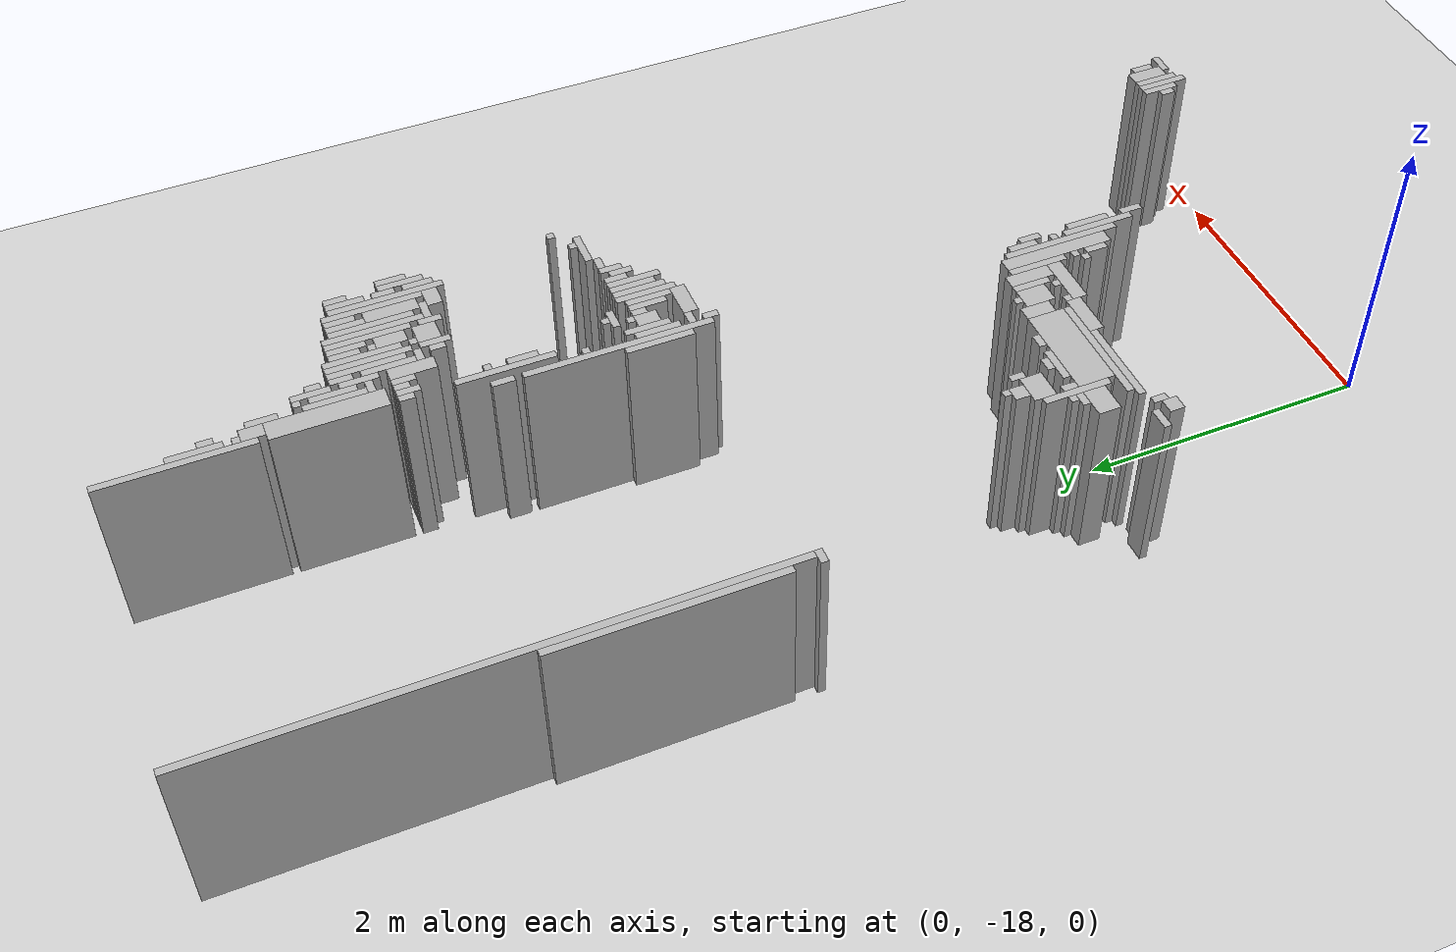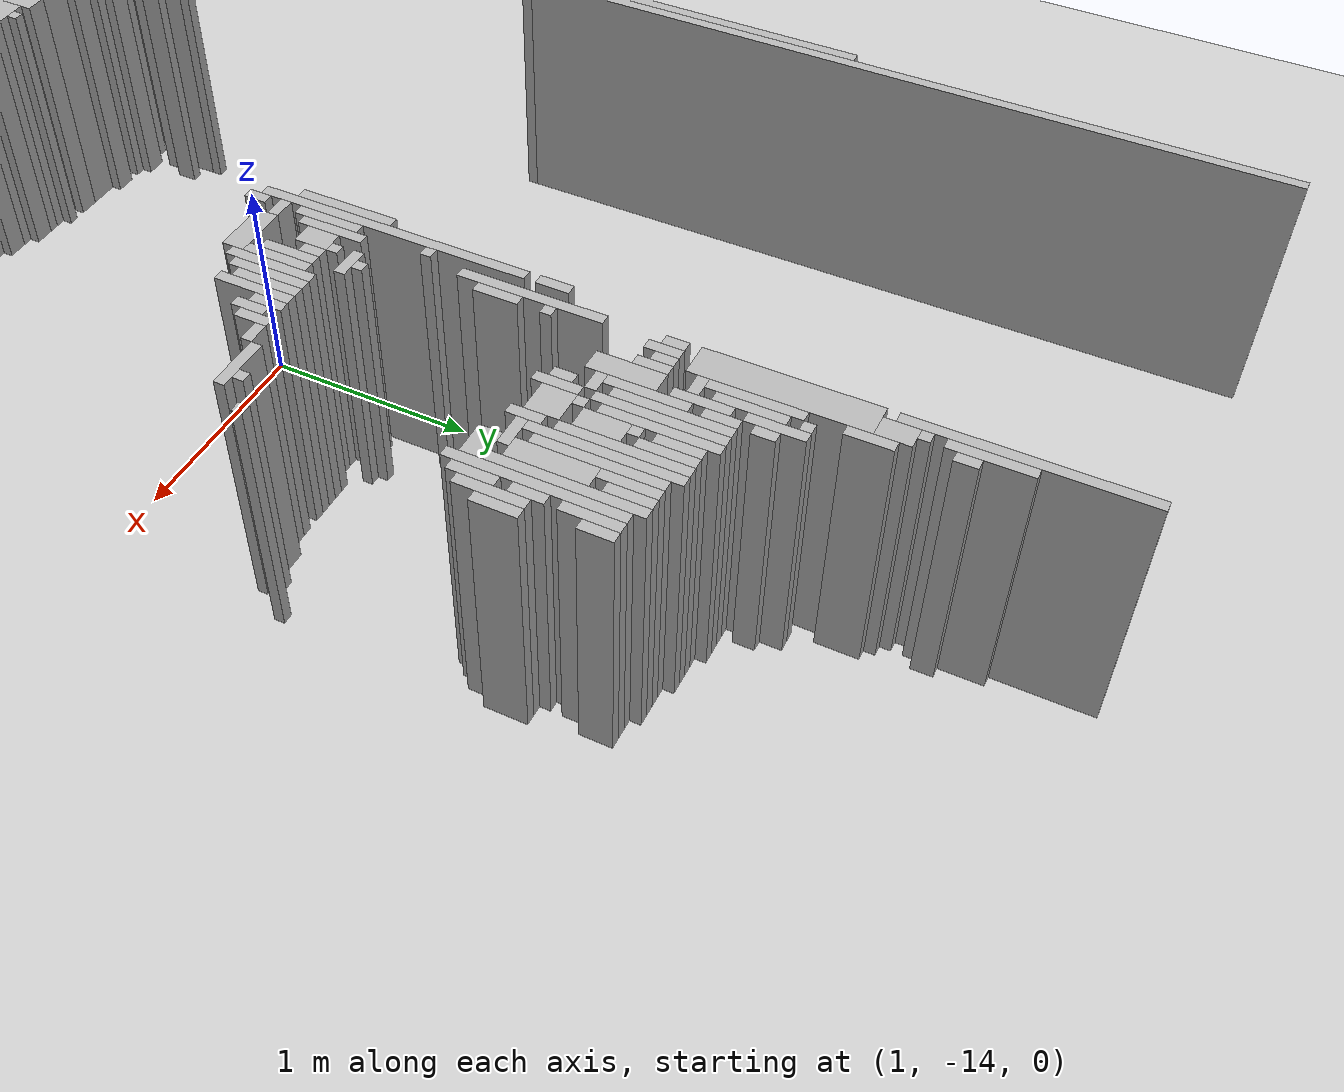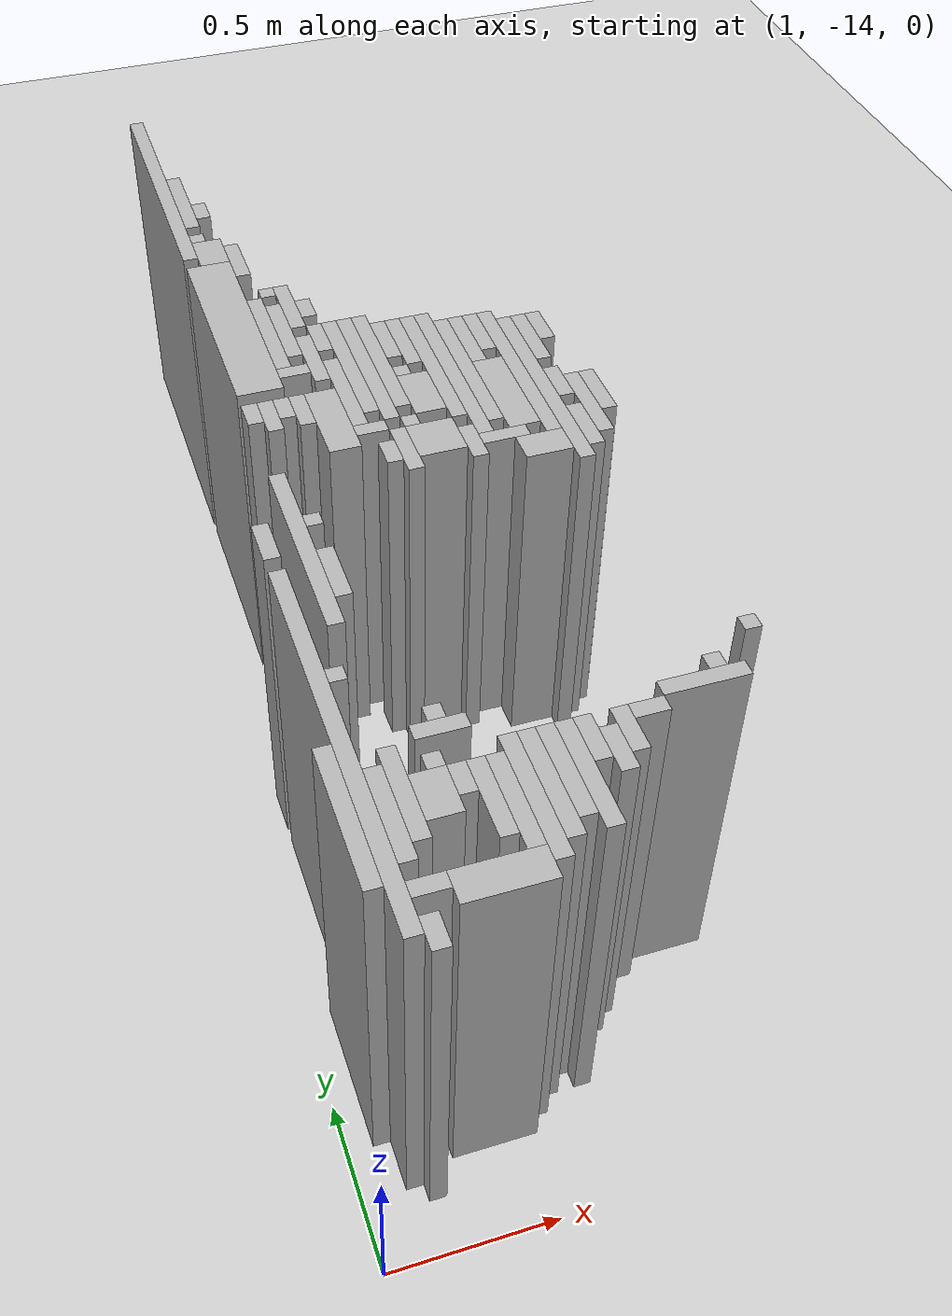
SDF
<sdf version="1.6">
 <world name="d10_floor">
  <include><uri>model://sun</uri></include>
  <include><uri>model://ground_plane</uri></include>
  <model name="d10_walls">
   <static>true</static>
   <link name="w196">
    <pose>2.150 -17.620 0.60 0 0 0</pose>
    <collision name="c"><geometry><box><size>0.050 0.350 1.20</size></box></geometry></collision>
    <visual name="v">
     <geometry><box><size>0.050 0.350 1.20</size></box></geometry>
     <material><ambient>0.6 0.6 0.6 1</ambient><diffuse>0.7 0.7 0.7 1</diffuse></material>
    </visual>
   </link>
   <link name="w204">
    <pose>2.200 -17.595 0.60 0 0 0</pose>
    <collision name="c"><geometry><box><size>0.050 0.300 1.20</size></box></geometry></collision>
    <visual name="v">
     <geometry><box><size>0.050 0.300 1.20</size></box></geometry>
     <material><ambient>0.6 0.6 0.6 1</ambient><diffuse>0.7 0.7 0.7 1</diffuse></material>
    </visual>
   </link>
   <link name="w205">
    <pose>2.350 -17.720 0.60 0 0 0</pose>
    <collision name="c"><geometry><box><size>0.150 0.050 1.20</size></box></geometry></collision>
    <visual name="v">
     <geometry><box><size>0.150 0.050 1.20</size></box></geometry>
     <material><ambient>0.6 0.6 0.6 1</ambient><diffuse>0.7 0.7 0.7 1</diffuse></material>
    </visual>
   </link>
   <link name="w213">
    <pose>2.100 -17.570 0.60 0 0 0</pose>
    <collision name="c"><geometry><box><size>0.050 0.250 1.20</size></box></geometry></collision>
    <visual name="v">
     <geometry><box><size>0.050 0.250 1.20</size></box></geometry>
     <material><ambient>0.6 0.6 0.6 1</ambient><diffuse>0.7 0.7 0.7 1</diffuse></material>
    </visual>
   </link>
   <link name="w214">
    <pose>2.275 -17.570 0.60 0 0 0</pose>
    <collision name="c"><geometry><box><size>0.100 0.250 1.20</size></box></geometry></collision>
    <visual name="v">
     <geometry><box><size>0.100 0.250 1.20</size></box></geometry>
     <material><ambient>0.6 0.6 0.6 1</ambient><diffuse>0.7 0.7 0.7 1</diffuse></material>
    </visual>
   </link>
   <link name="w219">
    <pose>2.050 -17.595 0.60 0 0 0</pose>
    <collision name="c"><geometry><box><size>0.050 0.100 1.20</size></box></geometry></collision>
    <visual name="v">
     <geometry><box><size>0.050 0.100 1.20</size></box></geometry>
     <material><ambient>0.6 0.6 0.6 1</ambient><diffuse>0.7 0.7 0.7 1</diffuse></material>
    </visual>
   </link>
   <link name="w220">
    <pose>2.350 -17.570 0.60 0 0 0</pose>
    <collision name="c"><geometry><box><size>0.050 0.150 1.20</size></box></geometry></collision>
    <visual name="v">
     <geometry><box><size>0.050 0.150 1.20</size></box></geometry>
     <material><ambient>0.6 0.6 0.6 1</ambient><diffuse>0.7 0.7 0.7 1</diffuse></material>
    </visual>
   </link>
   <link name="w258">
    <pose>1.050 -16.720 0.60 0 0 0</pose>
    <collision name="c"><geometry><box><size>0.050 0.150 1.20</size></box></geometry></collision>
    <visual name="v">
     <geometry><box><size>0.050 0.150 1.20</size></box></geometry>
     <material><ambient>0.6 0.6 0.6 1</ambient><diffuse>0.7 0.7 0.7 1</diffuse></material>
    </visual>
   </link>
   <link name="w266">
    <pose>1.000 -16.445 0.60 0 0 0</pose>
    <collision name="c"><geometry><box><size>0.050 0.500 1.20</size></box></geometry></collision>
    <visual name="v">
     <geometry><box><size>0.050 0.500 1.20</size></box></geometry>
     <material><ambient>0.6 0.6 0.6 1</ambient><diffuse>0.7 0.7 0.7 1</diffuse></material>
    </visual>
   </link>
   <link name="w279">
    <pose>0.950 -16.145 0.60 0 0 0</pose>
    <collision name="c"><geometry><box><size>0.050 0.800 1.20</size></box></geometry></collision>
    <visual name="v">
     <geometry><box><size>0.050 0.800 1.20</size></box></geometry>
     <material><ambient>0.6 0.6 0.6 1</ambient><diffuse>0.7 0.7 0.7 1</diffuse></material>
    </visual>
   </link>
   <link name="w280">
    <pose>1.050 -16.395 0.60 0 0 0</pose>
    <collision name="c"><geometry><box><size>0.050 0.300 1.20</size></box></geometry></collision>
    <visual name="v">
     <geometry><box><size>0.050 0.300 1.20</size></box></geometry>
     <material><ambient>0.6 0.6 0.6 1</ambient><diffuse>0.7 0.7 0.7 1</diffuse></material>
    </visual>
   </link>
   <link name="w288">
    <pose>0.875 -16.070 0.60 0 0 0</pose>
    <collision name="c"><geometry><box><size>0.100 0.750 1.20</size></box></geometry></collision>
    <visual name="v">
     <geometry><box><size>0.100 0.750 1.20</size></box></geometry>
     <material><ambient>0.6 0.6 0.6 1</ambient><diffuse>0.7 0.7 0.7 1</diffuse></material>
    </visual>
   </link>
   <link name="w289">
    <pose>0.800 -16.320 0.60 0 0 0</pose>
    <collision name="c"><geometry><box><size>0.050 0.150 1.20</size></box></geometry></collision>
    <visual name="v">
     <geometry><box><size>0.050 0.150 1.20</size></box></geometry>
     <material><ambient>0.6 0.6 0.6 1</ambient><diffuse>0.7 0.7 0.7 1</diffuse></material>
    </visual>
   </link>
   <link name="w327">
    <pose>0.750 -16.220 0.60 0 0 0</pose>
    <collision name="c"><geometry><box><size>0.050 0.050 1.20</size></box></geometry></collision>
    <visual name="v">
     <geometry><box><size>0.050 0.050 1.20</size></box></geometry>
     <material><ambient>0.6 0.6 0.6 1</ambient><diffuse>0.7 0.7 0.7 1</diffuse></material>
    </visual>
   </link>
   <link name="w346">
    <pose>0.800 -16.170 0.60 0 0 0</pose>
    <collision name="c"><geometry><box><size>0.050 0.050 1.20</size></box></geometry></collision>
    <visual name="v">
     <geometry><box><size>0.050 0.050 1.20</size></box></geometry>
     <material><ambient>0.6 0.6 0.6 1</ambient><diffuse>0.7 0.7 0.7 1</diffuse></material>
    </visual>
   </link>
   <link name="w375">
    <pose>1.000 -16.120 0.60 0 0 0</pose>
    <collision name="c"><geometry><box><size>0.050 0.050 1.20</size></box></geometry></collision>
    <visual name="v">
     <geometry><box><size>0.050 0.050 1.20</size></box></geometry>
     <material><ambient>0.6 0.6 0.6 1</ambient><diffuse>0.7 0.7 0.7 1</diffuse></material>
    </visual>
   </link>
   <link name="w407">
    <pose>-0.625 -16.045 0.60 0 0 0</pose>
    <collision name="c"><geometry><box><size>0.100 0.100 1.20</size></box></geometry></collision>
    <visual name="v">
     <geometry><box><size>0.100 0.100 1.20</size></box></geometry>
     <material><ambient>0.6 0.6 0.6 1</ambient><diffuse>0.7 0.7 0.7 1</diffuse></material>
    </visual>
   </link>
   <link name="w408">
    <pose>0.800 -15.895 0.60 0 0 0</pose>
    <collision name="c"><geometry><box><size>0.050 0.400 1.20</size></box></geometry></collision>
    <visual name="v">
     <geometry><box><size>0.050 0.400 1.20</size></box></geometry>
     <material><ambient>0.6 0.6 0.6 1</ambient><diffuse>0.7 0.7 0.7 1</diffuse></material>
    </visual>
   </link>
   <link name="w431">
    <pose>-0.550 -15.995 0.60 0 0 0</pose>
    <collision name="c"><geometry><box><size>0.050 0.100 1.20</size></box></geometry></collision>
    <visual name="v">
     <geometry><box><size>0.050 0.100 1.20</size></box></geometry>
     <material><ambient>0.6 0.6 0.6 1</ambient><diffuse>0.7 0.7 0.7 1</diffuse></material>
    </visual>
   </link>
   <link name="w432">
    <pose>0.600 -15.995 0.60 0 0 0</pose>
    <collision name="c"><geometry><box><size>0.350 0.100 1.20</size></box></geometry></collision>
    <visual name="v">
     <geometry><box><size>0.350 0.100 1.20</size></box></geometry>
     <material><ambient>0.6 0.6 0.6 1</ambient><diffuse>0.7 0.7 0.7 1</diffuse></material>
    </visual>
   </link>
   <link name="w433">
    <pose>1.050 -15.970 0.60 0 0 0</pose>
    <collision name="c"><geometry><box><size>0.050 0.150 1.20</size></box></geometry></collision>
    <visual name="v">
     <geometry><box><size>0.050 0.150 1.20</size></box></geometry>
     <material><ambient>0.6 0.6 0.6 1</ambient><diffuse>0.7 0.7 0.7 1</diffuse></material>
    </visual>
   </link>
   <link name="w456">
    <pose>0.275 -15.945 0.60 0 0 0</pose>
    <collision name="c"><geometry><box><size>0.300 0.100 1.20</size></box></geometry></collision>
    <visual name="v">
     <geometry><box><size>0.300 0.100 1.20</size></box></geometry>
     <material><ambient>0.6 0.6 0.6 1</ambient><diffuse>0.7 0.7 0.7 1</diffuse></material>
    </visual>
   </link>
   <link name="w457">
    <pose>1.000 -15.895 0.60 0 0 0</pose>
    <collision name="c"><geometry><box><size>0.050 0.200 1.20</size></box></geometry></collision>
    <visual name="v">
     <geometry><box><size>0.050 0.200 1.20</size></box></geometry>
     <material><ambient>0.6 0.6 0.6 1</ambient><diffuse>0.7 0.7 0.7 1</diffuse></material>
    </visual>
   </link>
   <link name="w470">
    <pose>-0.700 -15.920 0.60 0 0 0</pose>
    <collision name="c"><geometry><box><size>0.150 0.050 1.20</size></box></geometry></collision>
    <visual name="v">
     <geometry><box><size>0.150 0.050 1.20</size></box></geometry>
     <material><ambient>0.6 0.6 0.6 1</ambient><diffuse>0.7 0.7 0.7 1</diffuse></material>
    </visual>
   </link>
   <link name="w471">
    <pose>-0.175 -15.920 0.60 0 0 0</pose>
    <collision name="c"><geometry><box><size>0.600 0.050 1.20</size></box></geometry></collision>
    <visual name="v">
     <geometry><box><size>0.600 0.050 1.20</size></box></geometry>
     <material><ambient>0.6 0.6 0.6 1</ambient><diffuse>0.7 0.7 0.7 1</diffuse></material>
    </visual>
   </link>
   <link name="w472">
    <pose>0.450 -15.920 0.60 0 0 0</pose>
    <collision name="c"><geometry><box><size>0.050 0.050 1.20</size></box></geometry></collision>
    <visual name="v">
     <geometry><box><size>0.050 0.050 1.20</size></box></geometry>
     <material><ambient>0.6 0.6 0.6 1</ambient><diffuse>0.7 0.7 0.7 1</diffuse></material>
    </visual>
   </link>
   <link name="w473">
    <pose>0.600 -15.920 0.60 0 0 0</pose>
    <collision name="c"><geometry><box><size>0.050 0.050 1.20</size></box></geometry></collision>
    <visual name="v">
     <geometry><box><size>0.050 0.050 1.20</size></box></geometry>
     <material><ambient>0.6 0.6 0.6 1</ambient><diffuse>0.7 0.7 0.7 1</diffuse></material>
    </visual>
   </link>
   <link name="w474">
    <pose>0.725 -15.795 0.60 0 0 0</pose>
    <collision name="c"><geometry><box><size>0.100 0.300 1.20</size></box></geometry></collision>
    <visual name="v">
     <geometry><box><size>0.100 0.300 1.20</size></box></geometry>
     <material><ambient>0.6 0.6 0.6 1</ambient><diffuse>0.7 0.7 0.7 1</diffuse></material>
    </visual>
   </link>
   <link name="w487">
    <pose>-0.025 -15.870 0.60 0 0 0</pose>
    <collision name="c"><geometry><box><size>0.800 0.050 1.20</size></box></geometry></collision>
    <visual name="v">
     <geometry><box><size>0.800 0.050 1.20</size></box></geometry>
     <material><ambient>0.6 0.6 0.6 1</ambient><diffuse>0.7 0.7 0.7 1</diffuse></material>
    </visual>
   </link>
   <link name="w488">
    <pose>0.650 -15.770 0.60 0 0 0</pose>
    <collision name="c"><geometry><box><size>0.050 0.250 1.20</size></box></geometry></collision>
    <visual name="v">
     <geometry><box><size>0.050 0.250 1.20</size></box></geometry>
     <material><ambient>0.6 0.6 0.6 1</ambient><diffuse>0.7 0.7 0.7 1</diffuse></material>
    </visual>
   </link>
   <link name="w496">
    <pose>0.050 -15.720 0.60 0 0 0</pose>
    <collision name="c"><geometry><box><size>0.650 0.250 1.20</size></box></geometry></collision>
    <visual name="v">
     <geometry><box><size>0.650 0.250 1.20</size></box></geometry>
     <material><ambient>0.6 0.6 0.6 1</ambient><diffuse>0.7 0.7 0.7 1</diffuse></material>
    </visual>
   </link>
   <link name="w497">
    <pose>0.550 -15.745 0.60 0 0 0</pose>
    <collision name="c"><geometry><box><size>0.150 0.200 1.20</size></box></geometry></collision>
    <visual name="v">
     <geometry><box><size>0.150 0.200 1.20</size></box></geometry>
     <material><ambient>0.6 0.6 0.6 1</ambient><diffuse>0.7 0.7 0.7 1</diffuse></material>
    </visual>
   </link>
   <link name="w503">
    <pose>-0.300 -15.570 0.60 0 0 0</pose>
    <collision name="c"><geometry><box><size>0.050 0.450 1.20</size></box></geometry></collision>
    <visual name="v">
     <geometry><box><size>0.050 0.450 1.20</size></box></geometry>
     <material><ambient>0.6 0.6 0.6 1</ambient><diffuse>0.7 0.7 0.7 1</diffuse></material>
    </visual>
   </link>
   <link name="w504">
    <pose>0.425 -15.695 0.60 0 0 0</pose>
    <collision name="c"><geometry><box><size>0.100 0.200 1.20</size></box></geometry></collision>
    <visual name="v">
     <geometry><box><size>0.100 0.200 1.20</size></box></geometry>
     <material><ambient>0.6 0.6 0.6 1</ambient><diffuse>0.7 0.7 0.7 1</diffuse></material>
    </visual>
   </link>
   <link name="w510">
    <pose>-0.425 -15.670 0.60 0 0 0</pose>
    <collision name="c"><geometry><box><size>0.200 0.150 1.20</size></box></geometry></collision>
    <visual name="v">
     <geometry><box><size>0.200 0.150 1.20</size></box></geometry>
     <material><ambient>0.6 0.6 0.6 1</ambient><diffuse>0.7 0.7 0.7 1</diffuse></material>
    </visual>
   </link>
   <link name="w526">
    <pose>0.550 -15.620 0.60 0 0 0</pose>
    <collision name="c"><geometry><box><size>0.050 0.050 1.20</size></box></geometry></collision>
    <visual name="v">
     <geometry><box><size>0.050 0.050 1.20</size></box></geometry>
     <material><ambient>0.6 0.6 0.6 1</ambient><diffuse>0.7 0.7 0.7 1</diffuse></material>
    </visual>
   </link>
   <link name="w536">
    <pose>-0.375 -15.570 0.60 0 0 0</pose>
    <collision name="c"><geometry><box><size>0.100 0.050 1.20</size></box></geometry></collision>
    <visual name="v">
     <geometry><box><size>0.100 0.050 1.20</size></box></geometry>
     <material><ambient>0.6 0.6 0.6 1</ambient><diffuse>0.7 0.7 0.7 1</diffuse></material>
    </visual>
   </link>
   <link name="w537">
    <pose>-0.250 -15.545 0.60 0 0 0</pose>
    <collision name="c"><geometry><box><size>0.050 0.100 1.20</size></box></geometry></collision>
    <visual name="v">
     <geometry><box><size>0.050 0.100 1.20</size></box></geometry>
     <material><ambient>0.6 0.6 0.6 1</ambient><diffuse>0.7 0.7 0.7 1</diffuse></material>
    </visual>
   </link>
   <link name="w538">
    <pose>-0.050 -15.570 0.60 0 0 0</pose>
    <collision name="c"><geometry><box><size>0.250 0.050 1.20</size></box></geometry></collision>
    <visual name="v">
     <geometry><box><size>0.250 0.050 1.20</size></box></geometry>
     <material><ambient>0.6 0.6 0.6 1</ambient><diffuse>0.7 0.7 0.7 1</diffuse></material>
    </visual>
   </link>
   <link name="w539">
    <pose>0.175 -15.570 0.60 0 0 0</pose>
    <collision name="c"><geometry><box><size>0.100 0.050 1.20</size></box></geometry></collision>
    <visual name="v">
     <geometry><box><size>0.100 0.050 1.20</size></box></geometry>
     <material><ambient>0.6 0.6 0.6 1</ambient><diffuse>0.7 0.7 0.7 1</diffuse></material>
    </visual>
   </link>
   <link name="w547">
    <pose>-0.350 -15.520 0.60 0 0 0</pose>
    <collision name="c"><geometry><box><size>0.050 0.050 1.20</size></box></geometry></collision>
    <visual name="v">
     <geometry><box><size>0.050 0.050 1.20</size></box></geometry>
     <material><ambient>0.6 0.6 0.6 1</ambient><diffuse>0.7 0.7 0.7 1</diffuse></material>
    </visual>
   </link>
   <link name="w548">
    <pose>-0.025 -15.520 0.60 0 0 0</pose>
    <collision name="c"><geometry><box><size>0.100 0.050 1.20</size></box></geometry></collision>
    <visual name="v">
     <geometry><box><size>0.100 0.050 1.20</size></box></geometry>
     <material><ambient>0.6 0.6 0.6 1</ambient><diffuse>0.7 0.7 0.7 1</diffuse></material>
    </visual>
   </link>
   <link name="w555">
    <pose>-0.175 -15.370 0.60 0 0 0</pose>
    <collision name="c"><geometry><box><size>0.200 0.150 1.20</size></box></geometry></collision>
    <visual name="v">
     <geometry><box><size>0.200 0.150 1.20</size></box></geometry>
     <material><ambient>0.6 0.6 0.6 1</ambient><diffuse>0.7 0.7 0.7 1</diffuse></material>
    </visual>
   </link>
   <link name="w557">
    <pose>-0.050 -15.295 0.60 0 0 0</pose>
    <collision name="c"><geometry><box><size>0.050 0.100 1.20</size></box></geometry></collision>
    <visual name="v">
     <geometry><box><size>0.050 0.100 1.20</size></box></geometry>
     <material><ambient>0.6 0.6 0.6 1</ambient><diffuse>0.7 0.7 0.7 1</diffuse></material>
    </visual>
   </link>
   <link name="w558">
    <pose>-0.175 -15.245 0.60 0 0 0</pose>
    <collision name="c"><geometry><box><size>0.100 0.100 1.20</size></box></geometry></collision>
    <visual name="v">
     <geometry><box><size>0.100 0.100 1.20</size></box></geometry>
     <material><ambient>0.6 0.6 0.6 1</ambient><diffuse>0.7 0.7 0.7 1</diffuse></material>
    </visual>
   </link>
   <link name="w561">
    <pose>-0.150 -15.170 0.60 0 0 0</pose>
    <collision name="c"><geometry><box><size>0.050 0.050 1.20</size></box></geometry></collision>
    <visual name="v">
     <geometry><box><size>0.050 0.050 1.20</size></box></geometry>
     <material><ambient>0.6 0.6 0.6 1</ambient><diffuse>0.7 0.7 0.7 1</diffuse></material>
    </visual>
   </link>
   <link name="w612">
    <pose>1.200 -13.795 0.60 0 0 0</pose>
    <collision name="c"><geometry><box><size>0.050 0.100 1.20</size></box></geometry></collision>
    <visual name="v">
     <geometry><box><size>0.050 0.100 1.20</size></box></geometry>
     <material><ambient>0.6 0.6 0.6 1</ambient><diffuse>0.7 0.7 0.7 1</diffuse></material>
    </visual>
   </link>
   <link name="w616">
    <pose>1.150 -13.170 0.60 0 0 0</pose>
    <collision name="c"><geometry><box><size>0.050 1.250 1.20</size></box></geometry></collision>
    <visual name="v">
     <geometry><box><size>0.050 1.250 1.20</size></box></geometry>
     <material><ambient>0.6 0.6 0.6 1</ambient><diffuse>0.7 0.7 0.7 1</diffuse></material>
    </visual>
   </link>
   <link name="w623">
    <pose>1.400 -13.695 0.60 0 0 0</pose>
    <collision name="c"><geometry><box><size>0.250 0.100 1.20</size></box></geometry></collision>
    <visual name="v">
     <geometry><box><size>0.250 0.100 1.20</size></box></geometry>
     <material><ambient>0.6 0.6 0.6 1</ambient><diffuse>0.7 0.7 0.7 1</diffuse></material>
    </visual>
   </link>
   <link name="w633">
    <pose>1.225 -13.670 0.60 0 0 0</pose>
    <collision name="c"><geometry><box><size>0.100 0.050 1.20</size></box></geometry></collision>
    <visual name="v">
     <geometry><box><size>0.100 0.050 1.20</size></box></geometry>
     <material><ambient>0.6 0.6 0.6 1</ambient><diffuse>0.7 0.7 0.7 1</diffuse></material>
    </visual>
   </link>
   <link name="w634">
    <pose>1.550 -13.495 0.60 0 0 0</pose>
    <collision name="c"><geometry><box><size>0.050 0.400 1.20</size></box></geometry></collision>
    <visual name="v">
     <geometry><box><size>0.050 0.400 1.20</size></box></geometry>
     <material><ambient>0.6 0.6 0.6 1</ambient><diffuse>0.7 0.7 0.7 1</diffuse></material>
    </visual>
   </link>
   <link name="w640">
    <pose>-0.875 -13.620 0.60 0 0 0</pose>
    <collision name="c"><geometry><box><size>0.100 0.050 1.20</size></box></geometry></collision>
    <visual name="v">
     <geometry><box><size>0.100 0.050 1.20</size></box></geometry>
     <material><ambient>0.6 0.6 0.6 1</ambient><diffuse>0.7 0.7 0.7 1</diffuse></material>
    </visual>
   </link>
   <link name="w641">
    <pose>1.100 -13.420 0.60 0 0 0</pose>
    <collision name="c"><geometry><box><size>0.050 0.450 1.20</size></box></geometry></collision>
    <visual name="v">
     <geometry><box><size>0.050 0.450 1.20</size></box></geometry>
     <material><ambient>0.6 0.6 0.6 1</ambient><diffuse>0.7 0.7 0.7 1</diffuse></material>
    </visual>
   </link>
   <link name="w642">
    <pose>1.500 -13.495 0.60 0 0 0</pose>
    <collision name="c"><geometry><box><size>0.050 0.300 1.20</size></box></geometry></collision>
    <visual name="v">
     <geometry><box><size>0.050 0.300 1.20</size></box></geometry>
     <material><ambient>0.6 0.6 0.6 1</ambient><diffuse>0.7 0.7 0.7 1</diffuse></material>
    </visual>
   </link>
   <link name="w643">
    <pose>1.600 -13.470 0.60 0 0 0</pose>
    <collision name="c"><geometry><box><size>0.050 0.350 1.20</size></box></geometry></collision>
    <visual name="v">
     <geometry><box><size>0.050 0.350 1.20</size></box></geometry>
     <material><ambient>0.6 0.6 0.6 1</ambient><diffuse>0.7 0.7 0.7 1</diffuse></material>
    </visual>
   </link>
   <link name="w644">
    <pose>1.700 -13.470 0.60 0 0 0</pose>
    <collision name="c"><geometry><box><size>0.050 0.350 1.20</size></box></geometry></collision>
    <visual name="v">
     <geometry><box><size>0.050 0.350 1.20</size></box></geometry>
     <material><ambient>0.6 0.6 0.6 1</ambient><diffuse>0.7 0.7 0.7 1</diffuse></material>
    </visual>
   </link>
   <link name="w651">
    <pose>-0.850 -11.745 0.60 0 0 0</pose>
    <collision name="c"><geometry><box><size>0.050 3.700 1.20</size></box></geometry></collision>
    <visual name="v">
     <geometry><box><size>0.050 3.700 1.20</size></box></geometry>
     <material><ambient>0.6 0.6 0.6 1</ambient><diffuse>0.7 0.7 0.7 1</diffuse></material>
    </visual>
   </link>
   <link name="w652">
    <pose>1.200 -13.445 0.60 0 0 0</pose>
    <collision name="c"><geometry><box><size>0.050 0.300 1.20</size></box></geometry></collision>
    <visual name="v">
     <geometry><box><size>0.050 0.300 1.20</size></box></geometry>
     <material><ambient>0.6 0.6 0.6 1</ambient><diffuse>0.7 0.7 0.7 1</diffuse></material>
    </visual>
   </link>
   <link name="w653">
    <pose>1.450 -13.470 0.60 0 0 0</pose>
    <collision name="c"><geometry><box><size>0.050 0.250 1.20</size></box></geometry></collision>
    <visual name="v">
     <geometry><box><size>0.050 0.250 1.20</size></box></geometry>
     <material><ambient>0.6 0.6 0.6 1</ambient><diffuse>0.7 0.7 0.7 1</diffuse></material>
    </visual>
   </link>
   <link name="w654">
    <pose>1.650 -13.445 0.60 0 0 0</pose>
    <collision name="c"><geometry><box><size>0.050 0.300 1.20</size></box></geometry></collision>
    <visual name="v">
     <geometry><box><size>0.050 0.300 1.20</size></box></geometry>
     <material><ambient>0.6 0.6 0.6 1</ambient><diffuse>0.7 0.7 0.7 1</diffuse></material>
    </visual>
   </link>
   <link name="w660">
    <pose>1.250 -13.395 0.60 0 0 0</pose>
    <collision name="c"><geometry><box><size>0.050 0.300 1.20</size></box></geometry></collision>
    <visual name="v">
     <geometry><box><size>0.050 0.300 1.20</size></box></geometry>
     <material><ambient>0.6 0.6 0.6 1</ambient><diffuse>0.7 0.7 0.7 1</diffuse></material>
    </visual>
   </link>
   <link name="w662">
    <pose>1.325 -13.420 0.60 0 0 0</pose>
    <collision name="c"><geometry><box><size>0.100 0.150 1.20</size></box></geometry></collision>
    <visual name="v">
     <geometry><box><size>0.100 0.150 1.20</size></box></geometry>
     <material><ambient>0.6 0.6 0.6 1</ambient><diffuse>0.7 0.7 0.7 1</diffuse></material>
    </visual>
   </link>
   <link name="w663">
    <pose>1.800 -13.420 0.60 0 0 0</pose>
    <collision name="c"><geometry><box><size>0.050 0.150 1.20</size></box></geometry></collision>
    <visual name="v">
     <geometry><box><size>0.050 0.150 1.20</size></box></geometry>
     <material><ambient>0.6 0.6 0.6 1</ambient><diffuse>0.7 0.7 0.7 1</diffuse></material>
    </visual>
   </link>
   <link name="w669">
    <pose>-0.900 -12.695 0.60 0 0 0</pose>
    <collision name="c"><geometry><box><size>0.050 1.500 1.20</size></box></geometry></collision>
    <visual name="v">
     <geometry><box><size>0.050 1.500 1.20</size></box></geometry>
     <material><ambient>0.6 0.6 0.6 1</ambient><diffuse>0.7 0.7 0.7 1</diffuse></material>
    </visual>
   </link>
   <link name="w670">
    <pose>1.400 -13.395 0.60 0 0 0</pose>
    <collision name="c"><geometry><box><size>0.050 0.100 1.20</size></box></geometry></collision>
    <visual name="v">
     <geometry><box><size>0.050 0.100 1.20</size></box></geometry>
     <material><ambient>0.6 0.6 0.6 1</ambient><diffuse>0.7 0.7 0.7 1</diffuse></material>
    </visual>
   </link>
   <link name="w671">
    <pose>1.750 -13.370 0.60 0 0 0</pose>
    <collision name="c"><geometry><box><size>0.050 0.150 1.20</size></box></geometry></collision>
    <visual name="v">
     <geometry><box><size>0.050 0.150 1.20</size></box></geometry>
     <material><ambient>0.6 0.6 0.6 1</ambient><diffuse>0.7 0.7 0.7 1</diffuse></material>
    </visual>
   </link>
   <link name="w672">
    <pose>1.850 -13.370 0.60 0 0 0</pose>
    <collision name="c"><geometry><box><size>0.050 0.150 1.20</size></box></geometry></collision>
    <visual name="v">
     <geometry><box><size>0.050 0.150 1.20</size></box></geometry>
     <material><ambient>0.6 0.6 0.6 1</ambient><diffuse>0.7 0.7 0.7 1</diffuse></material>
    </visual>
   </link>
   <link name="w689">
    <pose>1.350 -13.320 0.60 0 0 0</pose>
    <collision name="c"><geometry><box><size>0.050 0.050 1.20</size></box></geometry></collision>
    <visual name="v">
     <geometry><box><size>0.050 0.050 1.20</size></box></geometry>
     <material><ambient>0.6 0.6 0.6 1</ambient><diffuse>0.7 0.7 0.7 1</diffuse></material>
    </visual>
   </link>
   <link name="w690">
    <pose>1.925 -13.320 0.60 0 0 0</pose>
    <collision name="c"><geometry><box><size>0.100 0.050 1.20</size></box></geometry></collision>
    <visual name="v">
     <geometry><box><size>0.100 0.050 1.20</size></box></geometry>
     <material><ambient>0.6 0.6 0.6 1</ambient><diffuse>0.7 0.7 0.7 1</diffuse></material>
    </visual>
   </link>
   <link name="w705">
    <pose>2.100 -13.270 0.60 0 0 0</pose>
    <collision name="c"><geometry><box><size>0.250 0.050 1.20</size></box></geometry></collision>
    <visual name="v">
     <geometry><box><size>0.250 0.050 1.20</size></box></geometry>
     <material><ambient>0.6 0.6 0.6 1</ambient><diffuse>0.7 0.7 0.7 1</diffuse></material>
    </visual>
   </link>
   <link name="w727">
    <pose>1.400 -13.220 0.60 0 0 0</pose>
    <collision name="c"><geometry><box><size>0.150 0.050 1.20</size></box></geometry></collision>
    <visual name="v">
     <geometry><box><size>0.150 0.050 1.20</size></box></geometry>
     <material><ambient>0.6 0.6 0.6 1</ambient><diffuse>0.7 0.7 0.7 1</diffuse></material>
    </visual>
   </link>
   <link name="w728">
    <pose>2.150 -13.220 0.60 0 0 0</pose>
    <collision name="c"><geometry><box><size>0.050 0.050 1.20</size></box></geometry></collision>
    <visual name="v">
     <geometry><box><size>0.050 0.050 1.20</size></box></geometry>
     <material><ambient>0.6 0.6 0.6 1</ambient><diffuse>0.7 0.7 0.7 1</diffuse></material>
    </visual>
   </link>
   <link name="w760">
    <pose>1.400 -13.170 0.60 0 0 0</pose>
    <collision name="c"><geometry><box><size>0.050 0.050 1.20</size></box></geometry></collision>
    <visual name="v">
     <geometry><box><size>0.050 0.050 1.20</size></box></geometry>
     <material><ambient>0.6 0.6 0.6 1</ambient><diffuse>0.7 0.7 0.7 1</diffuse></material>
    </visual>
   </link>
   <link name="w799">
    <pose>2.300 -13.120 0.60 0 0 0</pose>
    <collision name="c"><geometry><box><size>0.050 0.050 1.20</size></box></geometry></collision>
    <visual name="v">
     <geometry><box><size>0.050 0.050 1.20</size></box></geometry>
     <material><ambient>0.6 0.6 0.6 1</ambient><diffuse>0.7 0.7 0.7 1</diffuse></material>
    </visual>
   </link>
   <link name="w845">
    <pose>1.200 -12.970 0.60 0 0 0</pose>
    <collision name="c"><geometry><box><size>0.050 0.050 1.20</size></box></geometry></collision>
    <visual name="v">
     <geometry><box><size>0.050 0.050 1.20</size></box></geometry>
     <material><ambient>0.6 0.6 0.6 1</ambient><diffuse>0.7 0.7 0.7 1</diffuse></material>
    </visual>
   </link>
   <link name="w874">
    <pose>1.250 -12.470 0.60 0 0 0</pose>
    <collision name="c"><geometry><box><size>0.050 0.650 1.20</size></box></geometry></collision>
    <visual name="v">
     <geometry><box><size>0.050 0.650 1.20</size></box></geometry>
     <material><ambient>0.6 0.6 0.6 1</ambient><diffuse>0.7 0.7 0.7 1</diffuse></material>
    </visual>
   </link>
   <link name="w883">
    <pose>1.300 -12.595 0.60 0 0 0</pose>
    <collision name="c"><geometry><box><size>0.050 0.200 1.20</size></box></geometry></collision>
    <visual name="v">
     <geometry><box><size>0.050 0.200 1.20</size></box></geometry>
     <material><ambient>0.6 0.6 0.6 1</ambient><diffuse>0.7 0.7 0.7 1</diffuse></material>
    </visual>
   </link>
   <link name="w892">
    <pose>1.150 -12.420 0.60 0 0 0</pose>
    <collision name="c"><geometry><box><size>0.050 0.150 1.20</size></box></geometry></collision>
    <visual name="v">
     <geometry><box><size>0.050 0.150 1.20</size></box></geometry>
     <material><ambient>0.6 0.6 0.6 1</ambient><diffuse>0.7 0.7 0.7 1</diffuse></material>
    </visual>
   </link>
   <link name="w894">
    <pose>1.300 -12.370 0.60 0 0 0</pose>
    <collision name="c"><geometry><box><size>0.050 0.050 1.20</size></box></geometry></collision>
    <visual name="v">
     <geometry><box><size>0.050 0.050 1.20</size></box></geometry>
     <material><ambient>0.6 0.6 0.6 1</ambient><diffuse>0.7 0.7 0.7 1</diffuse></material>
    </visual>
   </link>
   <link name="w895">
    <pose>2.150 -11.970 0.60 0 0 0</pose>
    <collision name="c"><geometry><box><size>0.050 0.750 1.20</size></box></geometry></collision>
    <visual name="v">
     <geometry><box><size>0.050 0.750 1.20</size></box></geometry>
     <material><ambient>0.6 0.6 0.6 1</ambient><diffuse>0.7 0.7 0.7 1</diffuse></material>
    </visual>
   </link>
   <link name="w897">
    <pose>2.050 -12.245 0.60 0 0 0</pose>
    <collision name="c"><geometry><box><size>0.150 0.100 1.20</size></box></geometry></collision>
    <visual name="v">
     <geometry><box><size>0.150 0.100 1.20</size></box></geometry>
     <material><ambient>0.6 0.6 0.6 1</ambient><diffuse>0.7 0.7 0.7 1</diffuse></material>
    </visual>
   </link>
   <link name="w898">
    <pose>2.200 -12.195 0.60 0 0 0</pose>
    <collision name="c"><geometry><box><size>0.050 0.200 1.20</size></box></geometry></collision>
    <visual name="v">
     <geometry><box><size>0.050 0.200 1.20</size></box></geometry>
     <material><ambient>0.6 0.6 0.6 1</ambient><diffuse>0.7 0.7 0.7 1</diffuse></material>
    </visual>
   </link>
   <link name="w899">
    <pose>1.650 -12.145 0.60 0 0 0</pose>
    <collision name="c"><geometry><box><size>0.050 0.200 1.20</size></box></geometry></collision>
    <visual name="v">
     <geometry><box><size>0.050 0.200 1.20</size></box></geometry>
     <material><ambient>0.6 0.6 0.6 1</ambient><diffuse>0.7 0.7 0.7 1</diffuse></material>
    </visual>
   </link>
   <link name="w900">
    <pose>1.850 -12.170 0.60 0 0 0</pose>
    <collision name="c"><geometry><box><size>0.050 0.150 1.20</size></box></geometry></collision>
    <visual name="v">
     <geometry><box><size>0.050 0.150 1.20</size></box></geometry>
     <material><ambient>0.6 0.6 0.6 1</ambient><diffuse>0.7 0.7 0.7 1</diffuse></material>
    </visual>
   </link>
   <link name="w901">
    <pose>2.250 -12.095 0.60 0 0 0</pose>
    <collision name="c"><geometry><box><size>0.050 0.300 1.20</size></box></geometry></collision>
    <visual name="v">
     <geometry><box><size>0.050 0.300 1.20</size></box></geometry>
     <material><ambient>0.6 0.6 0.6 1</ambient><diffuse>0.7 0.7 0.7 1</diffuse></material>
    </visual>
   </link>
   <link name="w903">
    <pose>1.600 -12.145 0.60 0 0 0</pose>
    <collision name="c"><geometry><box><size>0.050 0.100 1.20</size></box></geometry></collision>
    <visual name="v">
     <geometry><box><size>0.050 0.100 1.20</size></box></geometry>
     <material><ambient>0.6 0.6 0.6 1</ambient><diffuse>0.7 0.7 0.7 1</diffuse></material>
    </visual>
   </link>
   <link name="w904">
    <pose>1.750 -12.120 0.60 0 0 0</pose>
    <collision name="c"><geometry><box><size>0.150 0.150 1.20</size></box></geometry></collision>
    <visual name="v">
     <geometry><box><size>0.150 0.150 1.20</size></box></geometry>
     <material><ambient>0.6 0.6 0.6 1</ambient><diffuse>0.7 0.7 0.7 1</diffuse></material>
    </visual>
   </link>
   <link name="w905">
    <pose>1.950 -12.170 0.60 0 0 0</pose>
    <collision name="c"><geometry><box><size>0.150 0.050 1.20</size></box></geometry></collision>
    <visual name="v">
     <geometry><box><size>0.150 0.050 1.20</size></box></geometry>
     <material><ambient>0.6 0.6 0.6 1</ambient><diffuse>0.7 0.7 0.7 1</diffuse></material>
    </visual>
   </link>
   <link name="w906">
    <pose>2.100 -11.870 0.60 0 0 0</pose>
    <collision name="c"><geometry><box><size>0.050 0.650 1.20</size></box></geometry></collision>
    <visual name="v">
     <geometry><box><size>0.050 0.650 1.20</size></box></geometry>
     <material><ambient>0.6 0.6 0.6 1</ambient><diffuse>0.7 0.7 0.7 1</diffuse></material>
    </visual>
   </link>
   <link name="w907">
    <pose>1.900 -11.820 0.60 0 0 0</pose>
    <collision name="c"><geometry><box><size>0.050 0.650 1.20</size></box></geometry></collision>
    <visual name="v">
     <geometry><box><size>0.050 0.650 1.20</size></box></geometry>
     <material><ambient>0.6 0.6 0.6 1</ambient><diffuse>0.7 0.7 0.7 1</diffuse></material>
    </visual>
   </link>
   <link name="w908">
    <pose>2.025 -11.970 0.60 0 0 0</pose>
    <collision name="c"><geometry><box><size>0.100 0.350 1.20</size></box></geometry></collision>
    <visual name="v">
     <geometry><box><size>0.100 0.350 1.20</size></box></geometry>
     <material><ambient>0.6 0.6 0.6 1</ambient><diffuse>0.7 0.7 0.7 1</diffuse></material>
    </visual>
   </link>
   <link name="w909">
    <pose>2.300 -12.045 0.60 0 0 0</pose>
    <collision name="c"><geometry><box><size>0.050 0.200 1.20</size></box></geometry></collision>
    <visual name="v">
     <geometry><box><size>0.050 0.200 1.20</size></box></geometry>
     <material><ambient>0.6 0.6 0.6 1</ambient><diffuse>0.7 0.7 0.7 1</diffuse></material>
    </visual>
   </link>
   <link name="w910">
    <pose>1.475 -11.945 0.60 0 0 0</pose>
    <collision name="c"><geometry><box><size>0.100 0.300 1.20</size></box></geometry></collision>
    <visual name="v">
     <geometry><box><size>0.100 0.300 1.20</size></box></geometry>
     <material><ambient>0.6 0.6 0.6 1</ambient><diffuse>0.7 0.7 0.7 1</diffuse></material>
    </visual>
   </link>
   <link name="w911">
    <pose>1.950 -11.820 0.60 0 0 0</pose>
    <collision name="c"><geometry><box><size>0.050 0.550 1.20</size></box></geometry></collision>
    <visual name="v">
     <geometry><box><size>0.050 0.550 1.20</size></box></geometry>
     <material><ambient>0.6 0.6 0.6 1</ambient><diffuse>0.7 0.7 0.7 1</diffuse></material>
    </visual>
   </link>
   <link name="w913">
    <pose>1.575 -12.020 0.60 0 0 0</pose>
    <collision name="c"><geometry><box><size>0.100 0.050 1.20</size></box></geometry></collision>
    <visual name="v">
     <geometry><box><size>0.100 0.050 1.20</size></box></geometry>
     <material><ambient>0.6 0.6 0.6 1</ambient><diffuse>0.7 0.7 0.7 1</diffuse></material>
    </visual>
   </link>
   <link name="w914">
    <pose>1.700 -12.020 0.60 0 0 0</pose>
    <collision name="c"><geometry><box><size>0.050 0.050 1.20</size></box></geometry></collision>
    <visual name="v">
     <geometry><box><size>0.050 0.050 1.20</size></box></geometry>
     <material><ambient>0.6 0.6 0.6 1</ambient><diffuse>0.7 0.7 0.7 1</diffuse></material>
    </visual>
   </link>
   <link name="w915">
    <pose>1.850 -11.770 0.60 0 0 0</pose>
    <collision name="c"><geometry><box><size>0.050 0.550 1.20</size></box></geometry></collision>
    <visual name="v">
     <geometry><box><size>0.050 0.550 1.20</size></box></geometry>
     <material><ambient>0.6 0.6 0.6 1</ambient><diffuse>0.7 0.7 0.7 1</diffuse></material>
    </visual>
   </link>
   <link name="w916">
    <pose>2.200 -11.970 0.60 0 0 0</pose>
    <collision name="c"><geometry><box><size>0.050 0.150 1.20</size></box></geometry></collision>
    <visual name="v">
     <geometry><box><size>0.050 0.150 1.20</size></box></geometry>
     <material><ambient>0.6 0.6 0.6 1</ambient><diffuse>0.7 0.7 0.7 1</diffuse></material>
    </visual>
   </link>
   <link name="w918">
    <pose>1.550 -11.820 0.60 0 0 0</pose>
    <collision name="c"><geometry><box><size>0.050 0.350 1.20</size></box></geometry></collision>
    <visual name="v">
     <geometry><box><size>0.050 0.350 1.20</size></box></geometry>
     <material><ambient>0.6 0.6 0.6 1</ambient><diffuse>0.7 0.7 0.7 1</diffuse></material>
    </visual>
   </link>
   <link name="w919">
    <pose>1.650 -11.720 0.60 0 0 0</pose>
    <collision name="c"><geometry><box><size>0.050 0.550 1.20</size></box></geometry></collision>
    <visual name="v">
     <geometry><box><size>0.050 0.550 1.20</size></box></geometry>
     <material><ambient>0.6 0.6 0.6 1</ambient><diffuse>0.7 0.7 0.7 1</diffuse></material>
    </visual>
   </link>
   <link name="w920">
    <pose>1.775 -11.895 0.60 0 0 0</pose>
    <collision name="c"><geometry><box><size>0.100 0.200 1.20</size></box></geometry></collision>
    <visual name="v">
     <geometry><box><size>0.100 0.200 1.20</size></box></geometry>
     <material><ambient>0.6 0.6 0.6 1</ambient><diffuse>0.7 0.7 0.7 1</diffuse></material>
    </visual>
   </link>
   <link name="w921">
    <pose>1.300 -11.870 0.60 0 0 0</pose>
    <collision name="c"><geometry><box><size>0.050 0.150 1.20</size></box></geometry></collision>
    <visual name="v">
     <geometry><box><size>0.050 0.150 1.20</size></box></geometry>
     <material><ambient>0.6 0.6 0.6 1</ambient><diffuse>0.7 0.7 0.7 1</diffuse></material>
    </visual>
   </link>
   <link name="w922">
    <pose>1.400 -11.870 0.60 0 0 0</pose>
    <collision name="c"><geometry><box><size>0.050 0.150 1.20</size></box></geometry></collision>
    <visual name="v">
     <geometry><box><size>0.050 0.150 1.20</size></box></geometry>
     <material><ambient>0.6 0.6 0.6 1</ambient><diffuse>0.7 0.7 0.7 1</diffuse></material>
    </visual>
   </link>
   <link name="w923">
    <pose>1.600 -11.695 0.60 0 0 0</pose>
    <collision name="c"><geometry><box><size>0.050 0.500 1.20</size></box></geometry></collision>
    <visual name="v">
     <geometry><box><size>0.050 0.500 1.20</size></box></geometry>
     <material><ambient>0.6 0.6 0.6 1</ambient><diffuse>0.7 0.7 0.7 1</diffuse></material>
    </visual>
   </link>
   <link name="w924">
    <pose>1.700 -11.695 0.60 0 0 0</pose>
    <collision name="c"><geometry><box><size>0.050 0.500 1.20</size></box></geometry></collision>
    <visual name="v">
     <geometry><box><size>0.050 0.500 1.20</size></box></geometry>
     <material><ambient>0.6 0.6 0.6 1</ambient><diffuse>0.7 0.7 0.7 1</diffuse></material>
    </visual>
   </link>
   <link name="w926">
    <pose>1.250 -11.845 0.60 0 0 0</pose>
    <collision name="c"><geometry><box><size>0.050 0.100 1.20</size></box></geometry></collision>
    <visual name="v">
     <geometry><box><size>0.050 0.100 1.20</size></box></geometry>
     <material><ambient>0.6 0.6 0.6 1</ambient><diffuse>0.7 0.7 0.7 1</diffuse></material>
    </visual>
   </link>
   <link name="w927">
    <pose>1.350 -11.845 0.60 0 0 0</pose>
    <collision name="c"><geometry><box><size>0.050 0.100 1.20</size></box></geometry></collision>
    <visual name="v">
     <geometry><box><size>0.050 0.100 1.20</size></box></geometry>
     <material><ambient>0.6 0.6 0.6 1</ambient><diffuse>0.7 0.7 0.7 1</diffuse></material>
    </visual>
   </link>
   <link name="w932">
    <pose>2.200 -11.720 0.60 0 0 0</pose>
    <collision name="c"><geometry><box><size>0.050 0.250 1.20</size></box></geometry></collision>
    <visual name="v">
     <geometry><box><size>0.050 0.250 1.20</size></box></geometry>
     <material><ambient>0.6 0.6 0.6 1</ambient><diffuse>0.7 0.7 0.7 1</diffuse></material>
    </visual>
   </link>
   <link name="w936">
    <pose>1.750 -11.770 0.60 0 0 0</pose>
    <collision name="c"><geometry><box><size>0.050 0.050 1.20</size></box></geometry></collision>
    <visual name="v">
     <geometry><box><size>0.050 0.050 1.20</size></box></geometry>
     <material><ambient>0.6 0.6 0.6 1</ambient><diffuse>0.7 0.7 0.7 1</diffuse></material>
    </visual>
   </link>
   <link name="w937">
    <pose>2.000 -11.670 0.60 0 0 0</pose>
    <collision name="c"><geometry><box><size>0.050 0.250 1.20</size></box></geometry></collision>
    <visual name="v">
     <geometry><box><size>0.050 0.250 1.20</size></box></geometry>
     <material><ambient>0.6 0.6 0.6 1</ambient><diffuse>0.7 0.7 0.7 1</diffuse></material>
    </visual>
   </link>
   <link name="w940">
    <pose>1.300 -11.370 0.60 0 0 0</pose>
    <collision name="c"><geometry><box><size>0.150 0.750 1.20</size></box></geometry></collision>
    <visual name="v">
     <geometry><box><size>0.150 0.750 1.20</size></box></geometry>
     <material><ambient>0.6 0.6 0.6 1</ambient><diffuse>0.7 0.7 0.7 1</diffuse></material>
    </visual>
   </link>
   <link name="w941">
    <pose>1.500 -11.620 0.60 0 0 0</pose>
    <collision name="c"><geometry><box><size>0.050 0.250 1.20</size></box></geometry></collision>
    <visual name="v">
     <geometry><box><size>0.050 0.250 1.20</size></box></geometry>
     <material><ambient>0.6 0.6 0.6 1</ambient><diffuse>0.7 0.7 0.7 1</diffuse></material>
    </visual>
   </link>
   <link name="w942">
    <pose>1.800 -11.620 0.60 0 0 0</pose>
    <collision name="c"><geometry><box><size>0.050 0.250 1.20</size></box></geometry></collision>
    <visual name="v">
     <geometry><box><size>0.050 0.250 1.20</size></box></geometry>
     <material><ambient>0.6 0.6 0.6 1</ambient><diffuse>0.7 0.7 0.7 1</diffuse></material>
    </visual>
   </link>
   <link name="w943">
    <pose>2.050 -11.645 0.60 0 0 0</pose>
    <collision name="c"><geometry><box><size>0.050 0.200 1.20</size></box></geometry></collision>
    <visual name="v">
     <geometry><box><size>0.050 0.200 1.20</size></box></geometry>
     <material><ambient>0.6 0.6 0.6 1</ambient><diffuse>0.7 0.7 0.7 1</diffuse></material>
    </visual>
   </link>
   <link name="w944">
    <pose>2.250 -11.670 0.60 0 0 0</pose>
    <collision name="c"><geometry><box><size>0.050 0.150 1.20</size></box></geometry></collision>
    <visual name="v">
     <geometry><box><size>0.050 0.150 1.20</size></box></geometry>
     <material><ambient>0.6 0.6 0.6 1</ambient><diffuse>0.7 0.7 0.7 1</diffuse></material>
    </visual>
   </link>
   <link name="w950">
    <pose>1.425 -11.670 0.60 0 0 0</pose>
    <collision name="c"><geometry><box><size>0.100 0.050 1.20</size></box></geometry></collision>
    <visual name="v">
     <geometry><box><size>0.100 0.050 1.20</size></box></geometry>
     <material><ambient>0.6 0.6 0.6 1</ambient><diffuse>0.7 0.7 0.7 1</diffuse></material>
    </visual>
   </link>
   <link name="w951">
    <pose>1.750 -11.595 0.60 0 0 0</pose>
    <collision name="c"><geometry><box><size>0.050 0.200 1.20</size></box></geometry></collision>
    <visual name="v">
     <geometry><box><size>0.050 0.200 1.20</size></box></geometry>
     <material><ambient>0.6 0.6 0.6 1</ambient><diffuse>0.7 0.7 0.7 1</diffuse></material>
    </visual>
   </link>
   <link name="w955">
    <pose>1.400 -11.445 0.60 0 0 0</pose>
    <collision name="c"><geometry><box><size>0.050 0.400 1.20</size></box></geometry></collision>
    <visual name="v">
     <geometry><box><size>0.050 0.400 1.20</size></box></geometry>
     <material><ambient>0.6 0.6 0.6 1</ambient><diffuse>0.7 0.7 0.7 1</diffuse></material>
    </visual>
   </link>
   <link name="w962">
    <pose>1.450 -11.445 0.60 0 0 0</pose>
    <collision name="c"><geometry><box><size>0.050 0.300 1.20</size></box></geometry></collision>
    <visual name="v">
     <geometry><box><size>0.050 0.300 1.20</size></box></geometry>
     <material><ambient>0.6 0.6 0.6 1</ambient><diffuse>0.7 0.7 0.7 1</diffuse></material>
    </visual>
   </link>
   <link name="w963">
    <pose>1.550 -11.520 0.60 0 0 0</pose>
    <collision name="c"><geometry><box><size>0.050 0.150 1.20</size></box></geometry></collision>
    <visual name="v">
     <geometry><box><size>0.050 0.150 1.20</size></box></geometry>
     <material><ambient>0.6 0.6 0.6 1</ambient><diffuse>0.7 0.7 0.7 1</diffuse></material>
    </visual>
   </link>
   <link name="w975">
    <pose>1.500 -11.320 0.60 0 0 0</pose>
    <collision name="c"><geometry><box><size>0.050 0.250 1.20</size></box></geometry></collision>
    <visual name="v">
     <geometry><box><size>0.050 0.250 1.20</size></box></geometry>
     <material><ambient>0.6 0.6 0.6 1</ambient><diffuse>0.7 0.7 0.7 1</diffuse></material>
    </visual>
   </link>
   <link name="w979">
    <pose>1.550 -11.345 0.60 0 0 0</pose>
    <collision name="c"><geometry><box><size>0.050 0.100 1.20</size></box></geometry></collision>
    <visual name="v">
     <geometry><box><size>0.050 0.100 1.20</size></box></geometry>
     <material><ambient>0.6 0.6 0.6 1</ambient><diffuse>0.7 0.7 0.7 1</diffuse></material>
    </visual>
   </link>
   <link name="w994">
    <pose>1.450 -11.220 0.60 0 0 0</pose>
    <collision name="c"><geometry><box><size>0.050 0.050 1.20</size></box></geometry></collision>
    <visual name="v">
     <geometry><box><size>0.050 0.050 1.20</size></box></geometry>
     <material><ambient>0.6 0.6 0.6 1</ambient><diffuse>0.7 0.7 0.7 1</diffuse></material>
    </visual>
   </link>
   <link name="w1013">
    <pose>1.400 -10.995 0.60 0 0 0</pose>
    <collision name="c"><geometry><box><size>0.050 0.200 1.20</size></box></geometry></collision>
    <visual name="v">
     <geometry><box><size>0.050 0.200 1.20</size></box></geometry>
     <material><ambient>0.6 0.6 0.6 1</ambient><diffuse>0.7 0.7 0.7 1</diffuse></material>
    </visual>
   </link>
   <link name="w1022">
    <pose>1.325 -10.920 0.60 0 0 0</pose>
    <collision name="c"><geometry><box><size>0.100 0.150 1.20</size></box></geometry></collision>
    <visual name="v">
     <geometry><box><size>0.100 0.150 1.20</size></box></geometry>
     <material><ambient>0.6 0.6 0.6 1</ambient><diffuse>0.7 0.7 0.7 1</diffuse></material>
    </visual>
   </link>
   <link name="w1025">
    <pose>1.250 -10.445 0.60 0 0 0</pose>
    <collision name="c"><geometry><box><size>0.050 1.000 1.20</size></box></geometry></collision>
    <visual name="v">
     <geometry><box><size>0.050 1.000 1.20</size></box></geometry>
     <material><ambient>0.6 0.6 0.6 1</ambient><diffuse>0.7 0.7 0.7 1</diffuse></material>
    </visual>
   </link>
   <link name="w1029">
    <pose>1.300 -10.820 0.60 0 0 0</pose>
    <collision name="c"><geometry><box><size>0.050 0.050 1.20</size></box></geometry></collision>
    <visual name="v">
     <geometry><box><size>0.050 0.050 1.20</size></box></geometry>
     <material><ambient>0.6 0.6 0.6 1</ambient><diffuse>0.7 0.7 0.7 1</diffuse></material>
    </visual>
   </link>
   <link name="w1032">
    <pose>1.300 -10.570 0.60 0 0 0</pose>
    <collision name="c"><geometry><box><size>0.050 0.350 1.20</size></box></geometry></collision>
    <visual name="v">
     <geometry><box><size>0.050 0.350 1.20</size></box></geometry>
     <material><ambient>0.6 0.6 0.6 1</ambient><diffuse>0.7 0.7 0.7 1</diffuse></material>
    </visual>
   </link>
   <link name="w1034">
    <pose>1.350 -10.645 0.60 0 0 0</pose>
    <collision name="c"><geometry><box><size>0.050 0.100 1.20</size></box></geometry></collision>
    <visual name="v">
     <geometry><box><size>0.050 0.100 1.20</size></box></geometry>
     <material><ambient>0.6 0.6 0.6 1</ambient><diffuse>0.7 0.7 0.7 1</diffuse></material>
    </visual>
   </link>
  </model>
 </world>
</sdf>
